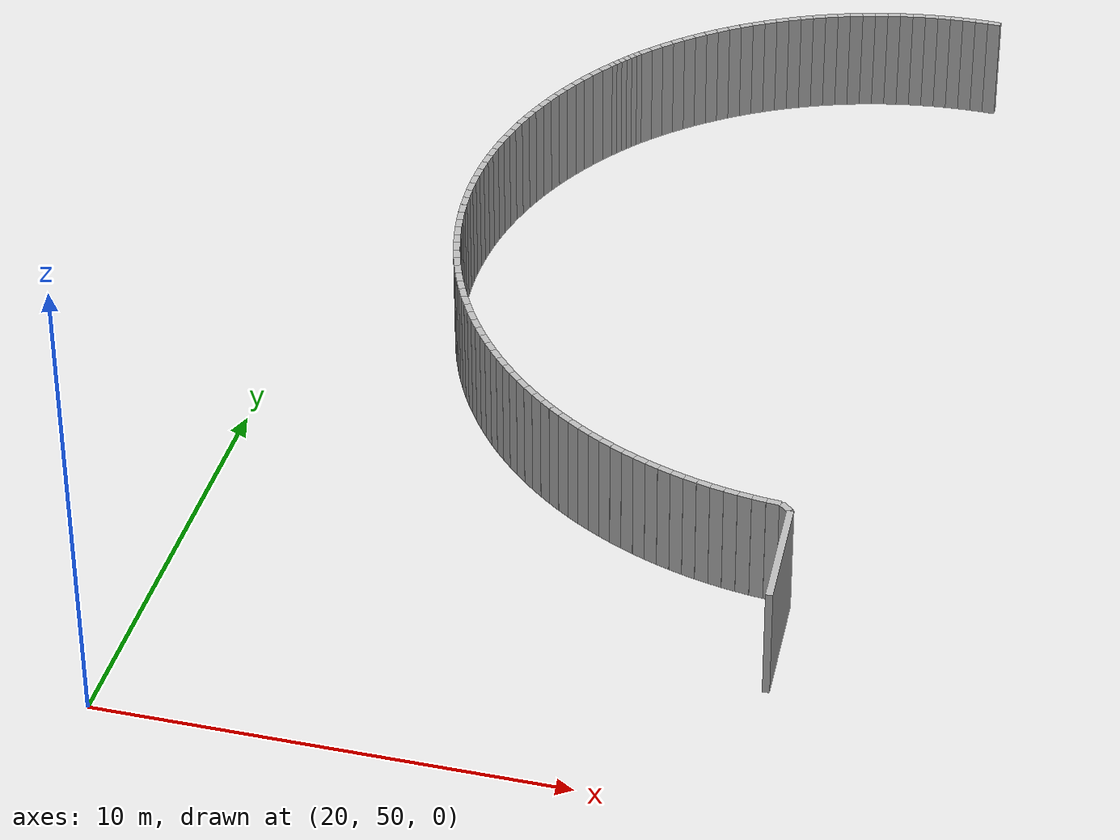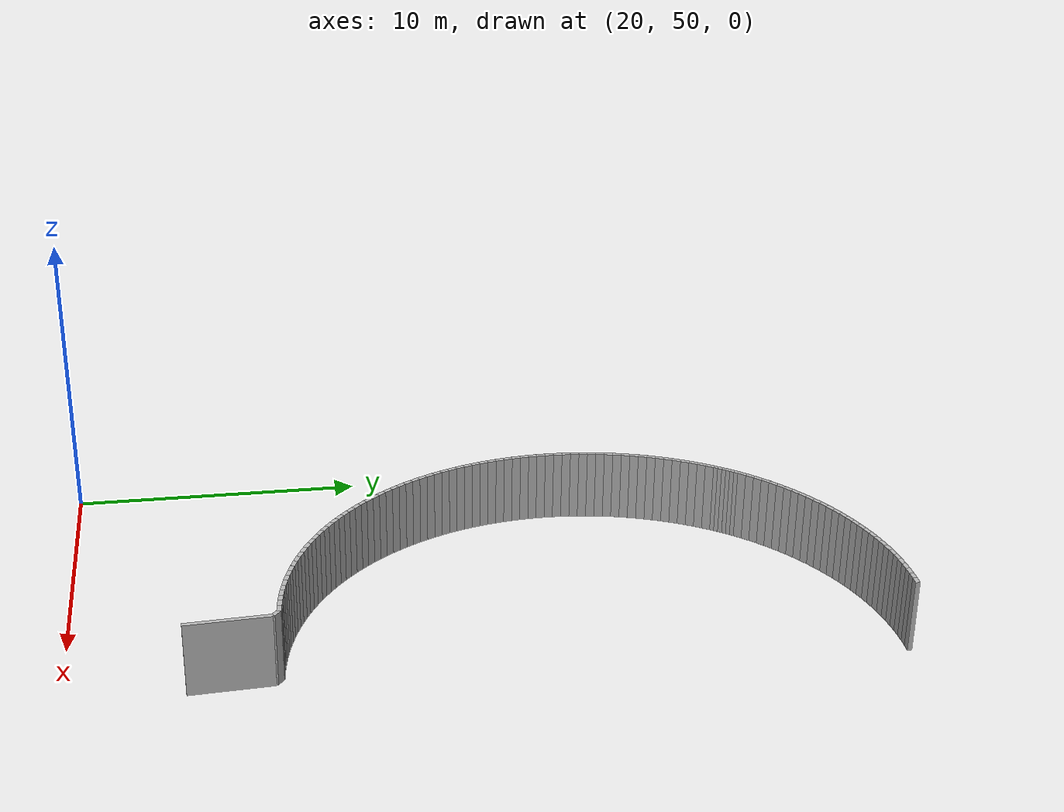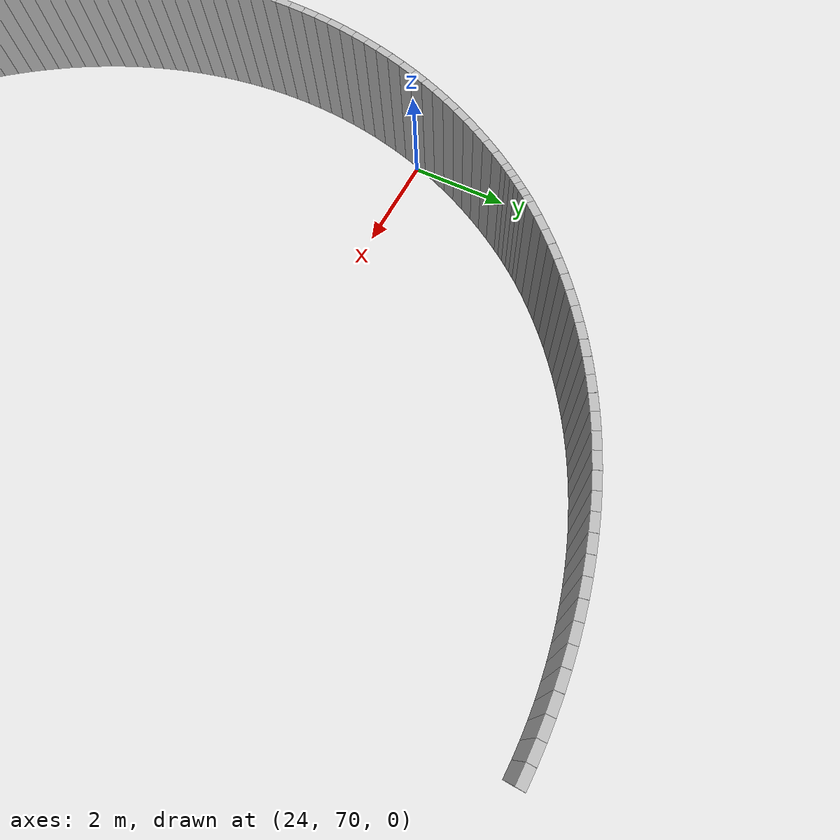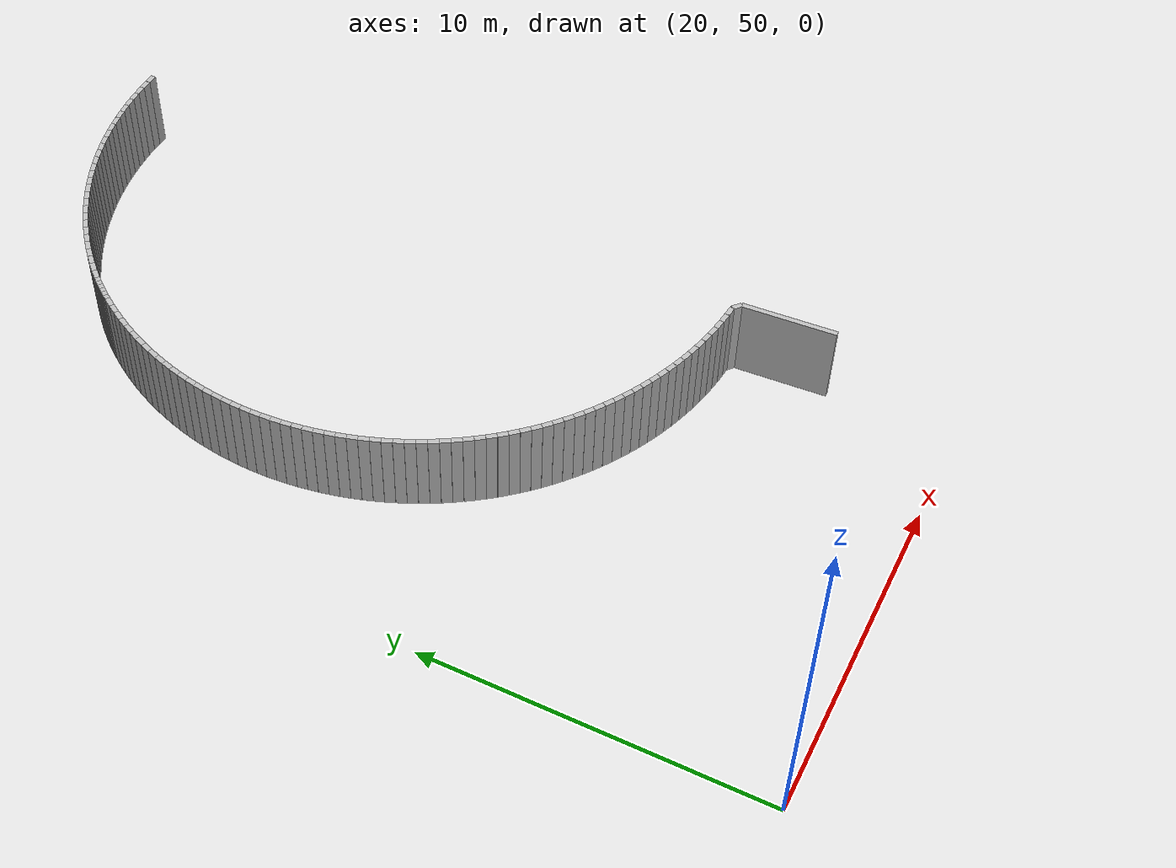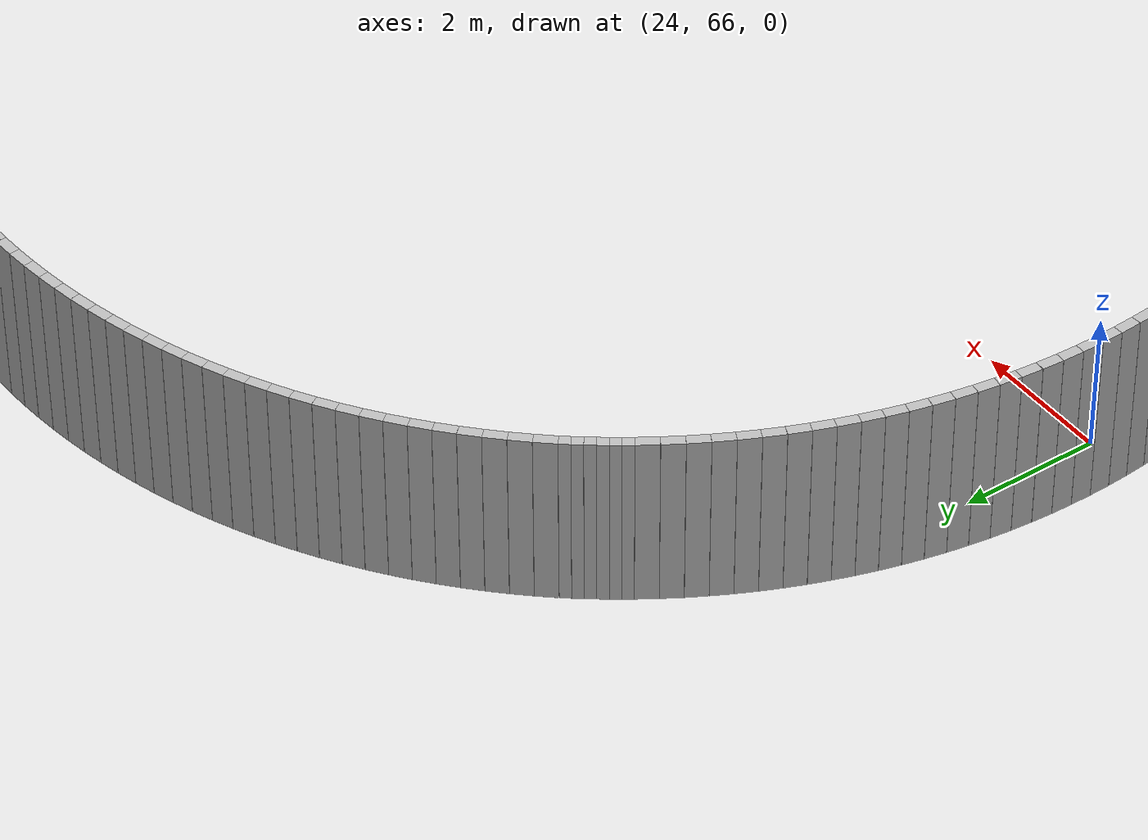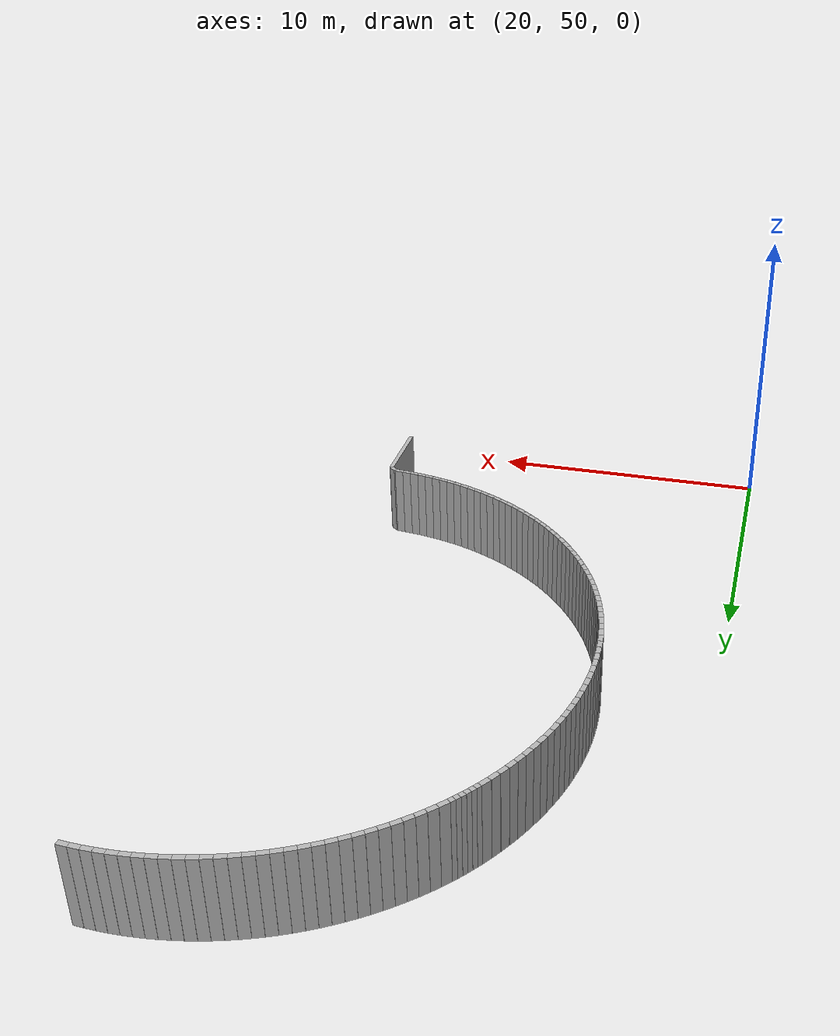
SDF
<sdf version="1.6">
 <model name="sps_2005">
  <static>1</static>
  <allow_auto_disable>0</allow_auto_disable>
  <link name="Wall1135">
   <collision name="collision"><geometry><box><size>2.75904 0.15 2.5</size></box></geometry></collision>
   <visual name="visual">
    <geometry><box><size>2.75904 0.15 2.5</size></box></geometry>
    <transparency>0.0</transparency>
   </visual>
   <pose>32.899 55.1598 1.25 0 -0 1.62766</pose>
  </link>
  <link name="Wall1136">
   <collision name="collision"><geometry><box><size>0.299242 0.15 2.5</size></box></geometry></collision>
   <visual name="visual">
    <geometry><box><size>0.299242 0.15 2.5</size></box></geometry>
    <transparency>0.0</transparency>
   </visual>
   <pose>32.7067 56.634 1.25 0 -0 2.4369</pose>
  </link>
  <link name="Wall1137">
   <collision name="collision"><geometry><box><size>0.304996 0.15 2.5</size></box></geometry></collision>
   <visual name="visual">
    <geometry><box><size>0.304996 0.15 2.5</size></box></geometry>
    <transparency>0.0</transparency>
   </visual>
   <pose>32.4408 56.7442 1.25 0 -0 3.05423</pose>
  </link>
  <link name="Wall1138">
   <collision name="collision"><geometry><box><size>0.304719 0.15 2.5</size></box></geometry></collision>
   <visual name="visual">
    <geometry><box><size>0.304719 0.15 2.5</size></box></geometry>
    <transparency>0.0</transparency>
   </visual>
   <pose>32.1375 56.7754 1.25 0 -0 3.02395</pose>
  </link>
  <link name="Wall1139">
   <collision name="collision"><geometry><box><size>0.304703 0.15 2.5</size></box></geometry></collision>
   <visual name="visual">
    <geometry><box><size>0.304703 0.15 2.5</size></box></geometry>
    <transparency>0.0</transparency>
   </visual>
   <pose>31.8355 56.8157 1.25 0 -0 2.99403</pose>
  </link>
  <link name="Wall1140">
   <collision name="collision"><geometry><box><size>0.304845 0.15 2.5</size></box></geometry></collision>
   <visual name="visual">
    <geometry><box><size>0.304845 0.15 2.5</size></box></geometry>
    <transparency>0.0</transparency>
   </visual>
   <pose>31.5348 56.8652 1.25 0 -0 2.96285</pose>
  </link>
  <link name="Wall1141">
   <collision name="collision"><geometry><box><size>0.304848 0.15 2.5</size></box></geometry></collision>
   <visual name="visual">
    <geometry><box><size>0.304848 0.15 2.5</size></box></geometry>
    <transparency>0.0</transparency>
   </visual>
   <pose>31.2357 56.9239 1.25 0 -0 2.93265</pose>
  </link>
  <link name="Wall1142">
   <collision name="collision"><geometry><box><size>0.304863 0.15 2.5</size></box></geometry></collision>
   <visual name="visual">
    <geometry><box><size>0.304863 0.15 2.5</size></box></geometry>
    <transparency>0.0</transparency>
   </visual>
   <pose>30.9385 56.9916 1.25 0 -0 2.90268</pose>
  </link>
  <link name="Wall1143">
   <collision name="collision"><geometry><box><size>0.304661 0.15 2.5</size></box></geometry></collision>
   <visual name="visual">
    <geometry><box><size>0.304661 0.15 2.5</size></box></geometry>
    <transparency>0.0</transparency>
   </visual>
   <pose>30.6436 57.0684 1.25 0 -0 2.87105</pose>
  </link>
  <link name="Wall1144">
   <collision name="collision"><geometry><box><size>0.304852 0.15 2.5</size></box></geometry></collision>
   <visual name="visual">
    <geometry><box><size>0.304852 0.15 2.5</size></box></geometry>
    <transparency>0.0</transparency>
   </visual>
   <pose>30.3512 57.1542 1.25 0 -0 2.84118</pose>
  </link>
  <link name="Wall1145">
   <collision name="collision"><geometry><box><size>0.304737 0.15 2.5</size></box></geometry></collision>
   <visual name="visual">
    <geometry><box><size>0.304737 0.15 2.5</size></box></geometry>
    <transparency>0.0</transparency>
   </visual>
   <pose>30.0615 57.2488 1.25 0 -0 2.81072</pose>
  </link>
  <link name="Wall1146">
   <collision name="collision"><geometry><box><size>0.304848 0.15 2.5</size></box></geometry></collision>
   <visual name="visual">
    <geometry><box><size>0.304848 0.15 2.5</size></box></geometry>
    <transparency>0.0</transparency>
   </visual>
   <pose>29.7749 57.3522 1.25 0 -0 2.7802</pose>
  </link>
  <link name="Wall1147">
   <collision name="collision"><geometry><box><size>0.304722 0.15 2.5</size></box></geometry></collision>
   <visual name="visual">
    <geometry><box><size>0.304722 0.15 2.5</size></box></geometry>
    <transparency>0.0</transparency>
   </visual>
   <pose>29.4915 57.4643 1.25 0 -0 2.74967</pose>
  </link>
  <link name="Wall1148">
   <collision name="collision"><geometry><box><size>0.304824 0.15 2.5</size></box></geometry></collision>
   <visual name="visual">
    <geometry><box><size>0.304824 0.15 2.5</size></box></geometry>
    <transparency>0.0</transparency>
   </visual>
   <pose>29.2117 57.585 1.25 0 -0 2.71906</pose>
  </link>
  <link name="Wall1149">
   <collision name="collision"><geometry><box><size>0.304831 0.15 2.5</size></box></geometry></collision>
   <visual name="visual">
    <geometry><box><size>0.304831 0.15 2.5</size></box></geometry>
    <transparency>0.0</transparency>
   </visual>
   <pose>28.9356 57.7141 1.25 0 -0 2.68923</pose>
  </link>
  <link name="Wall1150">
   <collision name="collision"><geometry><box><size>0.304734 0.15 2.5</size></box></geometry></collision>
   <visual name="visual">
    <geometry><box><size>0.304734 0.15 2.5</size></box></geometry>
    <transparency>0.0</transparency>
   </visual>
   <pose>28.6636 57.8515 1.25 0 -0 2.65833</pose>
  </link>
  <link name="Wall1151">
   <collision name="collision"><geometry><box><size>0.304981 0.15 2.5</size></box></geometry></collision>
   <visual name="visual">
    <geometry><box><size>0.304981 0.15 2.5</size></box></geometry>
    <transparency>0.0</transparency>
   </visual>
   <pose>28.3959 57.9973 1.25 0 -0 2.62754</pose>
  </link>
  <link name="Wall1152">
   <collision name="collision"><geometry><box><size>0.304719 0.15 2.5</size></box></geometry></collision>
   <visual name="visual">
    <geometry><box><size>0.304719 0.15 2.5</size></box></geometry>
    <transparency>0.0</transparency>
   </visual>
   <pose>28.1327 58.1511 1.25 0 -0 2.59805</pose>
  </link>
  <link name="Wall1153">
   <collision name="collision"><geometry><box><size>0.304849 0.15 2.5</size></box></geometry></collision>
   <visual name="visual">
    <geometry><box><size>0.304849 0.15 2.5</size></box></geometry>
    <transparency>0.0</transparency>
   </visual>
   <pose>27.8744 58.3128 1.25 0 -0 2.56642</pose>
  </link>
  <link name="Wall1154">
   <collision name="collision"><geometry><box><size>0.304751 0.15 2.5</size></box></geometry></collision>
   <visual name="visual">
    <geometry><box><size>0.304751 0.15 2.5</size></box></geometry>
    <transparency>0.0</transparency>
   </visual>
   <pose>27.6212 58.4824 1.25 0 -0 2.53631</pose>
  </link>
  <link name="Wall1155">
   <collision name="collision"><geometry><box><size>0.304782 0.15 2.5</size></box></geometry></collision>
   <visual name="visual">
    <geometry><box><size>0.304782 0.15 2.5</size></box></geometry>
    <transparency>0.0</transparency>
   </visual>
   <pose>27.3733 58.6596 1.25 0 -0 2.50586</pose>
  </link>
  <link name="Wall1156">
   <collision name="collision"><geometry><box><size>0.30478 0.15 2.5</size></box></geometry></collision>
   <visual name="visual">
    <geometry><box><size>0.30478 0.15 2.5</size></box></geometry>
    <transparency>0.0</transparency>
   </visual>
   <pose>27.1309 58.8443 1.25 0 -0 2.47514</pose>
  </link>
  <link name="Wall1157">
   <collision name="collision"><geometry><box><size>0.304862 0.15 2.5</size></box></geometry></collision>
   <visual name="visual">
    <geometry><box><size>0.304862 0.15 2.5</size></box></geometry>
    <transparency>0.0</transparency>
   </visual>
   <pose>26.8942 59.0363 1.25 0 -0 2.44493</pose>
  </link>
  <link name="Wall1158">
   <collision name="collision"><geometry><box><size>0.304831 0.15 2.5</size></box></geometry></collision>
   <visual name="visual">
    <geometry><box><size>0.304831 0.15 2.5</size></box></geometry>
    <transparency>0.0</transparency>
   </visual>
   <pose>26.6634 59.2354 1.25 0 -0 2.4147</pose>
  </link>
  <link name="Wall1159">
   <collision name="collision"><geometry><box><size>0.304729 0.15 2.5</size></box></geometry></collision>
   <visual name="visual">
    <geometry><box><size>0.304729 0.15 2.5</size></box></geometry>
    <transparency>0.0</transparency>
   </visual>
   <pose>26.4388 59.4414 1.25 0 -0 2.38396</pose>
  </link>
  <link name="Wall1160">
   <collision name="collision"><geometry><box><size>0.304656 0.15 2.5</size></box></geometry></collision>
   <visual name="visual">
    <geometry><box><size>0.304656 0.15 2.5</size></box></geometry>
    <transparency>0.0</transparency>
   </visual>
   <pose>26.2207 59.6541 1.25 0 -0 2.3535</pose>
  </link>
  <link name="Wall1161">
   <collision name="collision"><geometry><box><size>0.304907 0.15 2.5</size></box></geometry></collision>
   <visual name="visual">
    <geometry><box><size>0.304907 0.15 2.5</size></box></geometry>
    <transparency>0.0</transparency>
   </visual>
   <pose>26.0091 59.8734 1.25 0 -0 2.32321</pose>
  </link>
  <link name="Wall1162">
   <collision name="collision"><geometry><box><size>0.30484 0.15 2.5</size></box></geometry></collision>
   <visual name="visual">
    <geometry><box><size>0.30484 0.15 2.5</size></box></geometry>
    <transparency>0.0</transparency>
   </visual>
   <pose>25.8042 60.0991 1.25 0 -0 2.29258</pose>
  </link>
  <link name="Wall1163">
   <collision name="collision"><geometry><box><size>0.304715 0.15 2.5</size></box></geometry></collision>
   <visual name="visual">
    <geometry><box><size>0.304715 0.15 2.5</size></box></geometry>
    <transparency>0.0</transparency>
   </visual>
   <pose>25.6063 60.3309 1.25 0 -0 2.26187</pose>
  </link>
  <link name="Wall1164">
   <collision name="collision"><geometry><box><size>0.304845 0.15 2.5</size></box></geometry></collision>
   <visual name="visual">
    <geometry><box><size>0.304845 0.15 2.5</size></box></geometry>
    <transparency>0.0</transparency>
   </visual>
   <pose>25.4156 60.5686 1.25 0 -0 2.232</pose>
  </link>
  <link name="Wall1165">
   <collision name="collision"><geometry><box><size>0.30469 0.15 2.5</size></box></geometry></collision>
   <visual name="visual">
    <geometry><box><size>0.30469 0.15 2.5</size></box></geometry>
    <transparency>0.0</transparency>
   </visual>
   <pose>25.2323 60.812 1.25 0 -0 2.20104</pose>
  </link>
  <link name="Wall1166">
   <collision name="collision"><geometry><box><size>0.304962 0.15 2.5</size></box></geometry></collision>
   <visual name="visual">
    <geometry><box><size>0.304962 0.15 2.5</size></box></geometry>
    <transparency>0.0</transparency>
   </visual>
   <pose>25.0565 61.061 1.25 0 -0 2.17001</pose>
  </link>
  <link name="Wall1167">
   <collision name="collision"><geometry><box><size>0.304756 0.15 2.5</size></box></geometry></collision>
   <visual name="visual">
    <geometry><box><size>0.304756 0.15 2.5</size></box></geometry>
    <transparency>0.0</transparency>
   </visual>
   <pose>24.8883 61.3152 1.25 0 -0 2.14069</pose>
  </link>
  <link name="Wall1168">
   <collision name="collision"><geometry><box><size>0.304529 0.15 2.5</size></box></geometry></collision>
   <visual name="visual">
    <geometry><box><size>0.304529 0.15 2.5</size></box></geometry>
    <transparency>0.0</transparency>
   </visual>
   <pose>24.7277 61.5741 1.25 0 -0 2.11098</pose>
  </link>
  <link name="Wall1169">
   <collision name="collision"><geometry><box><size>0.304861 0.15 2.5</size></box></geometry></collision>
   <visual name="visual">
    <geometry><box><size>0.304861 0.15 2.5</size></box></geometry>
    <transparency>0.0</transparency>
   </visual>
   <pose>24.5753 61.8379 1.25 0 -0 2.07842</pose>
  </link>
  <link name="Wall1170">
   <collision name="collision"><geometry><box><size>0.304788 0.15 2.5</size></box></geometry></collision>
   <visual name="visual">
    <geometry><box><size>0.304788 0.15 2.5</size></box></geometry>
    <transparency>0.0</transparency>
   </visual>
   <pose>24.4311 62.1064 1.25 0 -0 2.04877</pose>
  </link>
  <link name="Wall1171">
   <collision name="collision"><geometry><box><size>0.305015 0.15 2.5</size></box></geometry></collision>
   <visual name="visual">
    <geometry><box><size>0.305015 0.15 2.5</size></box></geometry>
    <transparency>0.0</transparency>
   </visual>
   <pose>24.295 62.3792 1.25 0 -0 2.01842</pose>
  </link>
  <link name="Wall1172">
   <collision name="collision"><geometry><box><size>0.304635 0.15 2.5</size></box></geometry></collision>
   <visual name="visual">
    <geometry><box><size>0.304635 0.15 2.5</size></box></geometry>
    <transparency>0.0</transparency>
   </visual>
   <pose>24.1674 62.656 1.25 0 -0 1.98703</pose>
  </link>
  <link name="Wall1173">
   <collision name="collision"><geometry><box><size>0.304923 0.15 2.5</size></box></geometry></collision>
   <visual name="visual">
    <geometry><box><size>0.304923 0.15 2.5</size></box></geometry>
    <transparency>0.0</transparency>
   </visual>
   <pose>24.0484 62.9365 1.25 0 -0 1.95747</pose>
  </link>
  <link name="Wall1174">
   <collision name="collision"><geometry><box><size>0.304691 0.15 2.5</size></box></geometry></collision>
   <visual name="visual">
    <geometry><box><size>0.304691 0.15 2.5</size></box></geometry>
    <transparency>0.0</transparency>
   </visual>
   <pose>23.9378 63.2205 1.25 0 -0 1.92682</pose>
  </link>
  <link name="Wall1175">
   <collision name="collision"><geometry><box><size>0.304862 0.15 2.5</size></box></geometry></collision>
   <visual name="visual">
    <geometry><box><size>0.304862 0.15 2.5</size></box></geometry>
    <transparency>0.0</transparency>
   </visual>
   <pose>23.8359 63.5077 1.25 0 -0 1.89666</pose>
  </link>
  <link name="Wall1176">
   <collision name="collision"><geometry><box><size>0.304736 0.15 2.5</size></box></geometry></collision>
   <visual name="visual">
    <geometry><box><size>0.304736 0.15 2.5</size></box></geometry>
    <transparency>0.0</transparency>
   </visual>
   <pose>23.7428 63.7979 1.25 0 -0 1.86588</pose>
  </link>
  <link name="Wall1177">
   <collision name="collision"><geometry><box><size>0.304813 0.15 2.5</size></box></geometry></collision>
   <visual name="visual">
    <geometry><box><size>0.304813 0.15 2.5</size></box></geometry>
    <transparency>0.0</transparency>
   </visual>
   <pose>23.6586 64.0908 1.25 0 -0 1.83559</pose>
  </link>
  <link name="Wall1178">
   <collision name="collision"><geometry><box><size>0.3047 0.15 2.5</size></box></geometry></collision>
   <visual name="visual">
    <geometry><box><size>0.3047 0.15 2.5</size></box></geometry>
    <transparency>0.0</transparency>
   </visual>
   <pose>23.5835 64.3861 1.25 0 -0 1.80407</pose>
  </link>
  <link name="Wall1179">
   <collision name="collision"><geometry><box><size>0.304906 0.15 2.5</size></box></geometry></collision>
   <visual name="visual">
    <geometry><box><size>0.304906 0.15 2.5</size></box></geometry>
    <transparency>0.0</transparency>
   </visual>
   <pose>23.5174 64.6836 1.25 0 -0 1.77479</pose>
  </link>
  <link name="Wall1180">
   <collision name="collision"><geometry><box><size>0.304715 0.15 2.5</size></box></geometry></collision>
   <visual name="visual">
    <geometry><box><size>0.304715 0.15 2.5</size></box></geometry>
    <transparency>0.0</transparency>
   </visual>
   <pose>23.4603 64.983 1.25 0 -0 1.74372</pose>
  </link>
  <link name="Wall1181">
   <collision name="collision"><geometry><box><size>0.304897 0.15 2.5</size></box></geometry></collision>
   <visual name="visual">
    <geometry><box><size>0.304897 0.15 2.5</size></box></geometry>
    <transparency>0.0</transparency>
   </visual>
   <pose>23.4124 65.284 1.25 0 -0 1.713</pose>
  </link>
  <link name="Wall1182">
   <collision name="collision"><geometry><box><size>0.304739 0.15 2.5</size></box></geometry></collision>
   <visual name="visual">
    <geometry><box><size>0.304739 0.15 2.5</size></box></geometry>
    <transparency>0.0</transparency>
   </visual>
   <pose>23.3736 65.5863 1.25 0 -0 1.6838</pose>
  </link>
  <link name="Wall1183">
   <collision name="collision"><geometry><box><size>0.304847 0.15 2.5</size></box></geometry></collision>
   <visual name="visual">
    <geometry><box><size>0.304847 0.15 2.5</size></box></geometry>
    <transparency>0.0</transparency>
   </visual>
   <pose>23.344 65.8896 1.25 0 -0 1.65237</pose>
  </link>
  <link name="Wall1184">
   <collision name="collision"><geometry><box><size>0.30478 0.15 2.5</size></box></geometry></collision>
   <visual name="visual">
    <geometry><box><size>0.30478 0.15 2.5</size></box></geometry>
    <transparency>0.0</transparency>
   </visual>
   <pose>23.3238 66.1937 1.25 0 -0 1.62188</pose>
  </link>
  <link name="Wall1185">
   <collision name="collision"><geometry><box><size>0.304629 0.15 2.5</size></box></geometry></collision>
   <visual name="visual">
    <geometry><box><size>0.304629 0.15 2.5</size></box></geometry>
    <transparency>0.0</transparency>
   </visual>
   <pose>23.3129 66.4982 1.25 0 -0 1.59123</pose>
  </link>
  <link name="Wall1186">
   <collision name="collision"><geometry><box><size>0.304823 0.15 2.5</size></box></geometry></collision>
   <visual name="visual">
    <geometry><box><size>0.304823 0.15 2.5</size></box></geometry>
    <transparency>0.0</transparency>
   </visual>
   <pose>23.3112 66.8029 1.25 0 -0 1.56159</pose>
  </link>
  <link name="Wall1187">
   <collision name="collision"><geometry><box><size>0.304878 0.15 2.5</size></box></geometry></collision>
   <visual name="visual">
    <geometry><box><size>0.304878 0.15 2.5</size></box></geometry>
    <transparency>0.0</transparency>
   </visual>
   <pose>23.3188 67.1076 1.25 0 -0 1.53015</pose>
  </link>
  <link name="Wall1188">
   <collision name="collision"><geometry><box><size>0.304783 0.15 2.5</size></box></geometry></collision>
   <visual name="visual">
    <geometry><box><size>0.304783 0.15 2.5</size></box></geometry>
    <transparency>0.0</transparency>
   </visual>
   <pose>23.3358 67.4119 1.25 0 -0 1.49985</pose>
  </link>
  <link name="Wall1189">
   <collision name="collision"><geometry><box><size>0.304706 0.15 2.5</size></box></geometry></collision>
   <visual name="visual">
    <geometry><box><size>0.304706 0.15 2.5</size></box></geometry>
    <transparency>0.0</transparency>
   </visual>
   <pose>23.362 67.7155 1.25 0 -0 1.47007</pose>
  </link>
  <link name="Wall1190">
   <collision name="collision"><geometry><box><size>0.304842 0.15 2.5</size></box></geometry></collision>
   <visual name="visual">
    <geometry><box><size>0.304842 0.15 2.5</size></box></geometry>
    <transparency>0.0</transparency>
   </visual>
   <pose>23.3974 68.0182 1.25 0 -0 1.43867</pose>
  </link>
  <link name="Wall1191">
   <collision name="collision"><geometry><box><size>0.304838 0.15 2.5</size></box></geometry></collision>
   <visual name="visual">
    <geometry><box><size>0.304838 0.15 2.5</size></box></geometry>
    <transparency>0.0</transparency>
   </visual>
   <pose>23.442 68.3197 1.25 0 -0 1.40871</pose>
  </link>
  <link name="Wall1192">
   <collision name="collision"><geometry><box><size>0.304808 0.15 2.5</size></box></geometry></collision>
   <visual name="visual">
    <geometry><box><size>0.304808 0.15 2.5</size></box></geometry>
    <transparency>0.0</transparency>
   </visual>
   <pose>23.4957 68.6197 1.25 0 -0 1.37858</pose>
  </link>
  <link name="Wall1193">
   <collision name="collision"><geometry><box><size>0.304764 0.15 2.5</size></box></geometry></collision>
   <visual name="visual">
    <geometry><box><size>0.304764 0.15 2.5</size></box></geometry>
    <transparency>0.0</transparency>
   </visual>
   <pose>23.5586 68.9179 1.25 0 -0 1.34724</pose>
  </link>
  <link name="Wall1194">
   <collision name="collision"><geometry><box><size>0.30472 0.15 2.5</size></box></geometry></collision>
   <visual name="visual">
    <geometry><box><size>0.30472 0.15 2.5</size></box></geometry>
    <transparency>0.0</transparency>
   </visual>
   <pose>23.6306 69.214 1.25 0 -0 1.31732</pose>
  </link>
  <link name="Wall1195">
   <collision name="collision"><geometry><box><size>0.304807 0.15 2.5</size></box></geometry></collision>
   <visual name="visual">
    <geometry><box><size>0.304807 0.15 2.5</size></box></geometry>
    <transparency>0.0</transparency>
   </visual>
   <pose>23.7115 69.5078 1.25 0 -0 1.28686</pose>
  </link>
  <link name="Wall1196">
   <collision name="collision"><geometry><box><size>0.304847 0.15 2.5</size></box></geometry></collision>
   <visual name="visual">
    <geometry><box><size>0.304847 0.15 2.5</size></box></geometry>
    <transparency>0.0</transparency>
   </visual>
   <pose>23.8014 69.799 1.25 0 -0 1.25588</pose>
  </link>
  <link name="Wall1197">
   <collision name="collision"><geometry><box><size>0.304752 0.15 2.5</size></box></geometry></collision>
   <visual name="visual">
    <geometry><box><size>0.304752 0.15 2.5</size></box></geometry>
    <transparency>0.0</transparency>
   </visual>
   <pose>23.9003 70.0873 1.25 0 -0 1.22529</pose>
  </link>
  <link name="Wall1198">
   <collision name="collision"><geometry><box><size>0.305046 0.15 2.5</size></box></geometry></collision>
   <visual name="visual">
    <geometry><box><size>0.305046 0.15 2.5</size></box></geometry>
    <transparency>0.0</transparency>
   </visual>
   <pose>24.0078 70.3726 1.25 0 -0 1.19549</pose>
  </link>
  <link name="Wall1199">
   <collision name="collision"><geometry><box><size>0.3048 0.15 2.5</size></box></geometry></collision>
   <visual name="visual">
    <geometry><box><size>0.3048 0.15 2.5</size></box></geometry>
    <transparency>0.0</transparency>
   </visual>
   <pose>24.1239 70.6545 1.25 0 -0 1.16485</pose>
  </link>
  <link name="Wall1200">
   <collision name="collision"><geometry><box><size>0.304734 0.15 2.5</size></box></geometry></collision>
   <visual name="visual">
    <geometry><box><size>0.304734 0.15 2.5</size></box></geometry>
    <transparency>0.0</transparency>
   </visual>
   <pose>24.2484 70.9326 1.25 0 -0 1.13447</pose>
  </link>
  <link name="Wall1201">
   <collision name="collision"><geometry><box><size>0.304951 0.15 2.5</size></box></geometry></collision>
   <visual name="visual">
    <geometry><box><size>0.304951 0.15 2.5</size></box></geometry>
    <transparency>0.0</transparency>
   </visual>
   <pose>24.3816 71.2068 1.25 0 -0 1.10321</pose>
  </link>
  <link name="Wall1202">
   <collision name="collision"><geometry><box><size>0.304685 0.15 2.5</size></box></geometry></collision>
   <visual name="visual">
    <geometry><box><size>0.304685 0.15 2.5</size></box></geometry>
    <transparency>0.0</transparency>
   </visual>
   <pose>24.523 71.4768 1.25 0 -0 1.07337</pose>
  </link>
  <link name="Wall1203">
   <collision name="collision"><geometry><box><size>0.304762 0.15 2.5</size></box></geometry></collision>
   <visual name="visual">
    <geometry><box><size>0.304762 0.15 2.5</size></box></geometry>
    <transparency>0.0</transparency>
   </visual>
   <pose>24.6724 71.7423 1.25 0 -0 1.04271</pose>
  </link>
  <link name="Wall1204">
   <collision name="collision"><geometry><box><size>0.304859 0.15 2.5</size></box></geometry></collision>
   <visual name="visual">
    <geometry><box><size>0.304859 0.15 2.5</size></box></geometry>
    <transparency>0.0</transparency>
   </visual>
   <pose>24.8299 72.0032 1.25 0 -0 1.01273</pose>
  </link>
  <link name="Wall1205">
   <collision name="collision"><geometry><box><size>0.304757 0.15 2.5</size></box></geometry></collision>
   <visual name="visual">
    <geometry><box><size>0.304757 0.15 2.5</size></box></geometry>
    <transparency>0.0</transparency>
   </visual>
   <pose>24.9954 72.2592 1.25 0 -0 0.981516</pose>
  </link>
  <link name="Wall1206">
   <collision name="collision"><geometry><box><size>0.152376 0.15 2.5</size></box></geometry></collision>
   <visual name="visual">
    <geometry><box><size>0.152376 0.15 2.5</size></box></geometry>
    <transparency>0.0</transparency>
   </visual>
   <pose>25.1237 72.4483 1.25 0 -0 0.959906</pose>
  </link>
  <link name="Wall1207">
   <collision name="collision"><geometry><box><size>0.152401 0.15 2.5</size></box></geometry></collision>
   <visual name="visual">
    <geometry><box><size>0.152401 0.15 2.5</size></box></geometry>
    <transparency>0.0</transparency>
   </visual>
   <pose>25.2121 72.5724 1.25 0 -0 0.943796</pose>
  </link>
  <link name="Wall1208">
   <collision name="collision"><geometry><box><size>0.152124 0.15 2.5</size></box></geometry></collision>
   <visual name="visual">
    <geometry><box><size>0.152124 0.15 2.5</size></box></geometry>
    <transparency>0.0</transparency>
   </visual>
   <pose>25.3025 72.695 1.25 0 -0 0.928017</pose>
  </link>
  <link name="Wall1209">
   <collision name="collision"><geometry><box><size>0.152614 0.15 2.5</size></box></geometry></collision>
   <visual name="visual">
    <geometry><box><size>0.152614 0.15 2.5</size></box></geometry>
    <transparency>0.0</transparency>
   </visual>
   <pose>25.3946 72.8163 1.25 0 -0 0.913857</pose>
  </link>
  <link name="Wall1210">
   <collision name="collision"><geometry><box><size>0.152399 0.15 2.5</size></box></geometry></collision>
   <visual name="visual">
    <geometry><box><size>0.152399 0.15 2.5</size></box></geometry>
    <transparency>0.0</transparency>
   </visual>
   <pose>25.4888 72.9363 1.25 0 -0 0.897494</pose>
  </link>
  <link name="Wall1211">
   <collision name="collision"><geometry><box><size>0.152328 0.15 2.5</size></box></geometry></collision>
   <visual name="visual">
    <geometry><box><size>0.152328 0.15 2.5</size></box></geometry>
    <transparency>0.0</transparency>
   </visual>
   <pose>25.5847 73.0547 1.25 0 -0 0.882163</pose>
  </link>
  <link name="Wall1212">
   <collision name="collision"><geometry><box><size>0.304867 0.15 2.5</size></box></geometry></collision>
   <visual name="visual">
    <geometry><box><size>0.304867 0.15 2.5</size></box></geometry>
    <transparency>0.0</transparency>
   </visual>
   <pose>25.7342 73.2276 1.25 0 -0 0.845883</pose>
  </link>
  <link name="Wall1213">
   <collision name="collision"><geometry><box><size>0.304781 0.15 2.5</size></box></geometry></collision>
   <visual name="visual">
    <geometry><box><size>0.304781 0.15 2.5</size></box></geometry>
    <transparency>0.0</transparency>
   </visual>
   <pose>25.9398 73.4525 1.25 0 -0 0.814148</pose>
  </link>
  <link name="Wall1214">
   <collision name="collision"><geometry><box><size>0.304785 0.15 2.5</size></box></geometry></collision>
   <visual name="visual">
    <geometry><box><size>0.304785 0.15 2.5</size></box></geometry>
    <transparency>0.0</transparency>
   </visual>
   <pose>26.1524 73.6709 1.25 0 -0 0.783982</pose>
  </link>
  <link name="Wall1215">
   <collision name="collision"><geometry><box><size>0.304721 0.15 2.5</size></box></geometry></collision>
   <visual name="visual">
    <geometry><box><size>0.304721 0.15 2.5</size></box></geometry>
    <transparency>0.0</transparency>
   </visual>
   <pose>26.3714 73.8828 1.25 0 -0 0.753809</pose>
  </link>
  <link name="Wall1216">
   <collision name="collision"><geometry><box><size>0.304802 0.15 2.5</size></box></geometry></collision>
   <visual name="visual">
    <geometry><box><size>0.304802 0.15 2.5</size></box></geometry>
    <transparency>0.0</transparency>
   </visual>
   <pose>26.5966 74.088 1.25 0 -0 0.723765</pose>
  </link>
  <link name="Wall1217">
   <collision name="collision"><geometry><box><size>0.304807 0.15 2.5</size></box></geometry></collision>
   <visual name="visual">
    <geometry><box><size>0.304807 0.15 2.5</size></box></geometry>
    <transparency>0.0</transparency>
   </visual>
   <pose>26.8281 74.2862 1.25 0 -0 0.69238</pose>
  </link>
  <link name="Wall1218">
   <collision name="collision"><geometry><box><size>0.304621 0.15 2.5</size></box></geometry></collision>
   <visual name="visual">
    <geometry><box><size>0.304621 0.15 2.5</size></box></geometry>
    <transparency>0.0</transparency>
   </visual>
   <pose>27.0655 74.4772 1.25 0 -0 0.662537</pose>
  </link>
  <link name="Wall1219">
   <collision name="collision"><geometry><box><size>0.304988 0.15 2.5</size></box></geometry></collision>
   <visual name="visual">
    <geometry><box><size>0.304988 0.15 2.5</size></box></geometry>
    <transparency>0.0</transparency>
   </visual>
   <pose>27.3086 74.661 1.25 0 -0 0.632254</pose>
  </link>
  <link name="Wall1220">
   <collision name="collision"><geometry><box><size>0.304954 0.15 2.5</size></box></geometry></collision>
   <visual name="visual">
    <geometry><box><size>0.304954 0.15 2.5</size></box></geometry>
    <transparency>0.0</transparency>
   </visual>
   <pose>27.5574 74.8374 1.25 0 -0 0.601659</pose>
  </link>
  <link name="Wall1221">
   <collision name="collision"><geometry><box><size>0.304668 0.15 2.5</size></box></geometry></collision>
   <visual name="visual">
    <geometry><box><size>0.304668 0.15 2.5</size></box></geometry>
    <transparency>0.0</transparency>
   </visual>
   <pose>27.8113 75.006 1.25 0 -0 0.570555</pose>
  </link>
  <link name="Wall1222">
   <collision name="collision"><geometry><box><size>0.304781 0.15 2.5</size></box></geometry></collision>
   <visual name="visual">
    <geometry><box><size>0.304781 0.15 2.5</size></box></geometry>
    <transparency>0.0</transparency>
   </visual>
   <pose>28.0702 75.1667 1.25 0 -0 0.540385</pose>
  </link>
  <link name="Wall1223">
   <collision name="collision"><geometry><box><size>0.304749 0.15 2.5</size></box></geometry></collision>
   <visual name="visual">
    <geometry><box><size>0.304749 0.15 2.5</size></box></geometry>
    <transparency>0.0</transparency>
   </visual>
   <pose>28.3339 75.3194 1.25 0 -0 0.509433</pose>
  </link>
  <link name="Wall1224">
   <collision name="collision"><geometry><box><size>0.304769 0.15 2.5</size></box></geometry></collision>
   <visual name="visual">
    <geometry><box><size>0.304769 0.15 2.5</size></box></geometry>
    <transparency>0.0</transparency>
   </visual>
   <pose>28.6021 75.464 1.25 0 -0 0.47959</pose>
  </link>
  <link name="Wall1225">
   <collision name="collision"><geometry><box><size>0.304843 0.15 2.5</size></box></geometry></collision>
   <visual name="visual">
    <geometry><box><size>0.304843 0.15 2.5</size></box></geometry>
    <transparency>0.0</transparency>
   </visual>
   <pose>28.8746 75.6005 1.25 0 -0 0.449231</pose>
  </link>
  <link name="Wall1226">
   <collision name="collision"><geometry><box><size>0.304827 0.15 2.5</size></box></geometry></collision>
   <visual name="visual">
    <geometry><box><size>0.304827 0.15 2.5</size></box></geometry>
    <transparency>0.0</transparency>
   </visual>
   <pose>29.1511 75.7286 1.25 0 -0 0.418143</pose>
  </link>
  <link name="Wall1227">
   <collision name="collision"><geometry><box><size>0.304745 0.15 2.5</size></box></geometry></collision>
   <visual name="visual">
    <geometry><box><size>0.304745 0.15 2.5</size></box></geometry>
    <transparency>0.0</transparency>
   </visual>
   <pose>29.4314 75.8482 1.25 0 -0 0.388428</pose>
  </link>
  <link name="Wall1228">
   <collision name="collision"><geometry><box><size>0.304819 0.15 2.5</size></box></geometry></collision>
   <visual name="visual">
    <geometry><box><size>0.304819 0.15 2.5</size></box></geometry>
    <transparency>0.0</transparency>
   </visual>
   <pose>29.7153 75.9592 1.25 0 -0 0.357154</pose>
  </link>
  <link name="Wall1229">
   <collision name="collision"><geometry><box><size>0.304768 0.15 2.5</size></box></geometry></collision>
   <visual name="visual">
    <geometry><box><size>0.304768 0.15 2.5</size></box></geometry>
    <transparency>0.0</transparency>
   </visual>
   <pose>30.0023 76.0615 1.25 0 -0 0.32745</pose>
  </link>
  <link name="Wall1230">
   <collision name="collision"><geometry><box><size>0.304726 0.15 2.5</size></box></geometry></collision>
   <visual name="visual">
    <geometry><box><size>0.304726 0.15 2.5</size></box></geometry>
    <transparency>0.0</transparency>
   </visual>
   <pose>30.2924 76.155 1.25 0 -0 0.296349</pose>
  </link>
  <link name="Wall1231">
   <collision name="collision"><geometry><box><size>0.304925 0.15 2.5</size></box></geometry></collision>
   <visual name="visual">
    <geometry><box><size>0.304925 0.15 2.5</size></box></geometry>
    <transparency>0.0</transparency>
   </visual>
   <pose>30.5852 76.2396 1.25 0 -0 0.266147</pose>
  </link>
  <link name="Wall1232">
   <collision name="collision"><geometry><box><size>0.304961 0.15 2.5</size></box></geometry></collision>
   <visual name="visual">
    <geometry><box><size>0.304961 0.15 2.5</size></box></geometry>
    <transparency>0.0</transparency>
   </visual>
   <pose>30.8805 76.3152 1.25 0 -0 0.235125</pose>
  </link>
  <link name="Wall1233">
   <collision name="collision"><geometry><box><size>0.304634 0.15 2.5</size></box></geometry></collision>
   <visual name="visual">
    <geometry><box><size>0.304634 0.15 2.5</size></box></geometry>
    <transparency>0.0</transparency>
   </visual>
   <pose>31.1779 76.3818 1.25 0 -0 0.205608</pose>
  </link>
  <link name="Wall1234">
   <collision name="collision"><geometry><box><size>0.30487 0.15 2.5</size></box></geometry></collision>
   <visual name="visual">
    <geometry><box><size>0.30487 0.15 2.5</size></box></geometry>
    <transparency>0.0</transparency>
   </visual>
   <pose>31.4772 76.4394 1.25 0 -0 0.174661</pose>
  </link>
  <link name="Wall1235">
   <collision name="collision"><geometry><box><size>0.304707 0.15 2.5</size></box></geometry></collision>
   <visual name="visual">
    <geometry><box><size>0.304707 0.15 2.5</size></box></geometry>
    <transparency>0.0</transparency>
   </visual>
   <pose>31.7781 76.4877 1.25 0 -0 0.143512</pose>
  </link>
  <link name="Wall1236">
   <collision name="collision"><geometry><box><size>0.304767 0.15 2.5</size></box></geometry></collision>
   <visual name="visual">
    <geometry><box><size>0.304767 0.15 2.5</size></box></geometry>
    <transparency>0.0</transparency>
   </visual>
   <pose>32.0803 76.5268 1.25 0 -0 0.113798</pose>
  </link>
  <link name="Wall1237">
   <collision name="collision"><geometry><box><size>0.304649 0.15 2.5</size></box></geometry></collision>
   <visual name="visual">
    <geometry><box><size>0.304649 0.15 2.5</size></box></geometry>
    <transparency>0.0</transparency>
   </visual>
   <pose>32.3834 76.5568 1.25 0 -0 0.0834407</pose>
  </link>
  <link name="Wall1238">
   <collision name="collision"><geometry><box><size>0.304863 0.15 2.5</size></box></geometry></collision>
   <visual name="visual">
    <geometry><box><size>0.304863 0.15 2.5</size></box></geometry>
    <transparency>0.0</transparency>
   </visual>
   <pose>32.6875 76.5775 1.25 0 -0 0.0524778</pose>
  </link>
  <link name="Wall1239">
   <collision name="collision"><geometry><box><size>0.304825 0.15 2.5</size></box></geometry></collision>
   <visual name="visual">
    <geometry><box><size>0.304825 0.15 2.5</size></box></geometry>
    <transparency>0.0</transparency>
   </visual>
   <pose>32.9921 76.5889 1.25 0 -0 0.0224276</pose>
  </link>
  <link name="Wall1240">
   <collision name="collision"><geometry><box><size>0.304821 0.15 2.5</size></box></geometry></collision>
   <visual name="visual">
    <geometry><box><size>0.304821 0.15 2.5</size></box></geometry>
    <transparency>0.0</transparency>
   </visual>
   <pose>33.2968 76.591 1.25 0 0 -0.00861012</pose>
  </link>
  <link name="Wall1241">
   <collision name="collision"><geometry><box><size>0.304847 0.15 2.5</size></box></geometry></collision>
   <visual name="visual">
    <geometry><box><size>0.304847 0.15 2.5</size></box></geometry>
    <transparency>0.0</transparency>
   </visual>
   <pose>33.6016 76.5839 1.25 0 0 -0.0380501</pose>
  </link>
 </model>
</sdf>
